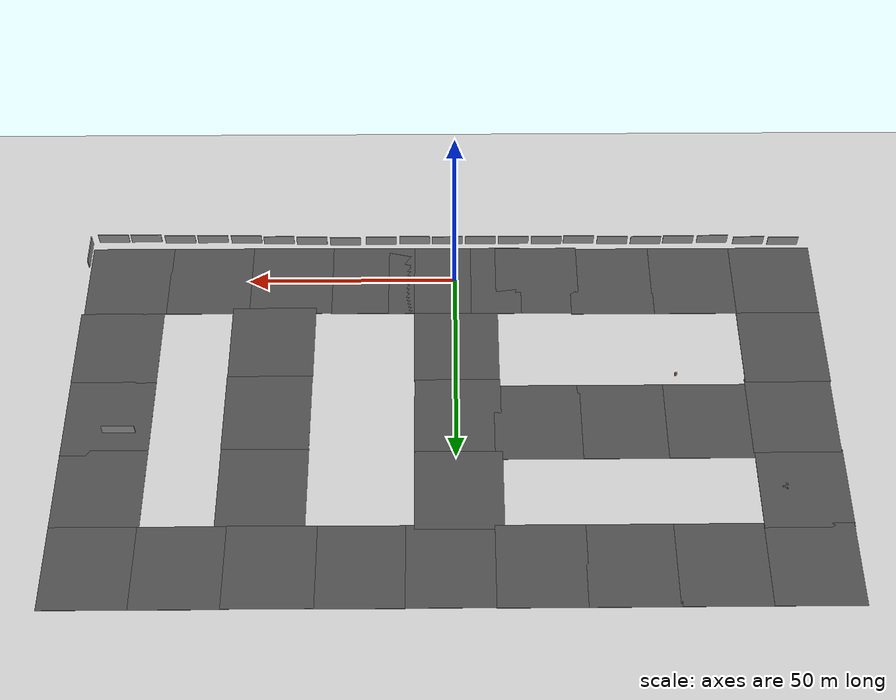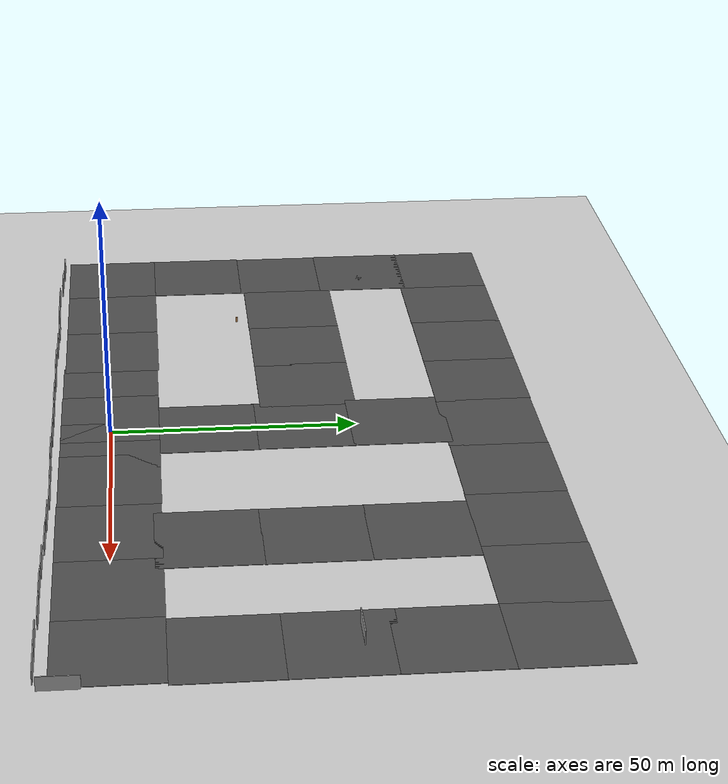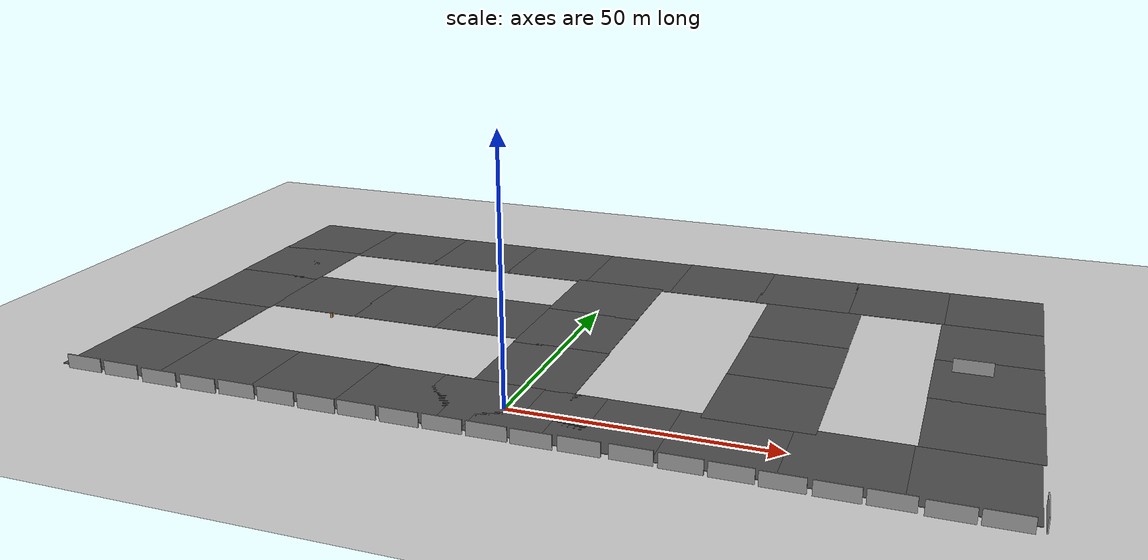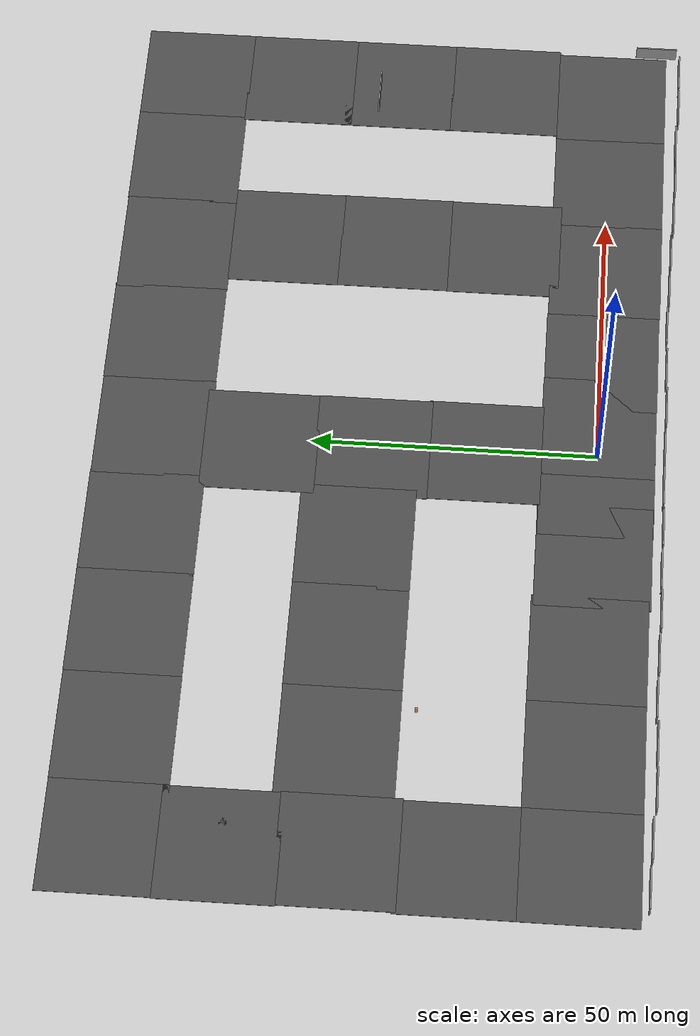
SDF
<sdf version="1.7">
 <world name="default">
  <model name="ground_plane">
   <static>1</static>
   <link name="link">
    <collision name="collision">
     <geometry><plane><normal>0 0 1</normal><size>100 100</size></plane></geometry>
     <surface><friction><ode><mu>100</mu><mu2>50</mu2></ode></friction></surface>
    </collision>
    <visual name="visual">
     <cast_shadows>0</cast_shadows>
     <geometry><plane><normal>0 0 1</normal><size>100 100</size></plane></geometry>
     <material>
      <script><uri>file://media/materials/scripts/gazebo.material</uri><name>Gazebo/Grey</name></script>
     </material>
    </visual>
   </link>
  </model>
  <gravity>0 0 -9.8</gravity>
  <magnetic_field>6e-06 2.3e-05 -4.2e-05</magnetic_field>
  <atmosphere type="adiabatic"/>
  <physics type="ode">
   <max_step_size>0.001</max_step_size>
   <real_time_factor>1</real_time_factor>
   <real_time_update_rate>1000</real_time_update_rate>
  </physics>
  <scene><ambient>0.4 0.4 0.4 1</ambient><background>0.7 0.7 0.7 1</background><shadows>1</shadows></scene>
  <audio><device>default</device></audio>
  <spherical_coordinates>
   <surface_model>EARTH_WGS84</surface_model>
   <latitude_deg>0</latitude_deg>
   <longitude_deg>0</longitude_deg>
   <elevation>0</elevation>
   <heading_deg>0</heading_deg>
  </spherical_coordinates>
  <model name="asphalt_plane_0">
   <static>1</static>
   <link name="link">
    <collision name="collision"><geometry><box><size>20 20 0.1</size></box></geometry></collision>
    <visual name="visual">
     <cast_shadows>0</cast_shadows>
     <geometry><box><size>20 20 0.1</size></box></geometry>
     <material>
      <script>
       <uri>model://asphalt_plane/materials/scripts</uri>
       <uri>model://asphalt_plane/materials/textures</uri>
       <name>vrc/asphalt</name>
      </script>
     </material>
    </visual>
   </link>
   <pose>19.7919 -0.145678 0 0 -0 0</pose>
  </model>
  <model name="asphalt_plane_1">
   <static>1</static>
   <link name="link">
    <collision name="collision"><geometry><box><size>20 20 0.1</size></box></geometry></collision>
    <visual name="visual">
     <cast_shadows>0</cast_shadows>
     <geometry><box><size>20 20 0.1</size></box></geometry>
     <material>
      <script>
       <uri>model://asphalt_plane/materials/scripts</uri>
       <uri>model://asphalt_plane/materials/textures</uri>
       <name>vrc/asphalt</name>
      </script>
     </material>
    </visual>
   </link>
   <pose>39.7233 -0.27555 0 0 -0 0</pose>
  </model>
  <model name="asphalt_plane_2">
   <static>1</static>
   <link name="link">
    <collision name="collision"><geometry><box><size>20 20 0.1</size></box></geometry></collision>
    <visual name="visual">
     <cast_shadows>0</cast_shadows>
     <geometry><box><size>20 20 0.1</size></box></geometry>
     <material>
      <script>
       <uri>model://asphalt_plane/materials/scripts</uri>
       <uri>model://asphalt_plane/materials/textures</uri>
       <name>vrc/asphalt</name>
      </script>
     </material>
    </visual>
   </link>
   <pose>-20.0269 0.030714 0 0 -0 0</pose>
  </model>
  <model name="asphalt_plane_3">
   <static>1</static>
   <link name="link">
    <collision name="collision"><geometry><box><size>20 20 0.1</size></box></geometry></collision>
    <visual name="visual">
     <cast_shadows>0</cast_shadows>
     <geometry><box><size>20 20 0.1</size></box></geometry>
     <material>
      <script>
       <uri>model://asphalt_plane/materials/scripts</uri>
       <uri>model://asphalt_plane/materials/textures</uri>
       <name>vrc/asphalt</name>
      </script>
     </material>
    </visual>
   </link>
   <pose>-38.1078 0.338038 0 0 -0 0</pose>
  </model>
  <model name="asphalt_plane_4">
   <static>1</static>
   <link name="link">
    <collision name="collision"><geometry><box><size>20 20 0.1</size></box></geometry></collision>
    <visual name="visual">
     <cast_shadows>0</cast_shadows>
     <geometry><box><size>20 20 0.1</size></box></geometry>
     <material>
      <script>
       <uri>model://asphalt_plane/materials/scripts</uri>
       <uri>model://asphalt_plane/materials/textures</uri>
       <name>vrc/asphalt</name>
      </script>
     </material>
    </visual>
   </link>
   <pose>59.5212 -0.269111 0 0 -0 0</pose>
  </model>
  <model name="asphalt_plane_5">
   <static>1</static>
   <link name="link">
    <collision name="collision"><geometry><box><size>20 20 0.1</size></box></geometry></collision>
    <visual name="visual">
     <cast_shadows>0</cast_shadows>
     <geometry><box><size>20 20 0.1</size></box></geometry>
     <material>
      <script>
       <uri>model://asphalt_plane/materials/scripts</uri>
       <uri>model://asphalt_plane/materials/textures</uri>
       <name>vrc/asphalt</name>
      </script>
     </material>
    </visual>
   </link>
   <pose>-57.8489 0.35056 0 0 -0 0</pose>
  </model>
  <model name="asphalt_plane_6">
   <static>1</static>
   <link name="link">
    <collision name="collision"><geometry><box><size>20 20 0.1</size></box></geometry></collision>
    <visual name="visual">
     <cast_shadows>0</cast_shadows>
     <geometry><box><size>20 20 0.1</size></box></geometry>
     <material>
      <script>
       <uri>model://asphalt_plane/materials/scripts</uri>
       <uri>model://asphalt_plane/materials/textures</uri>
       <name>vrc/asphalt</name>
      </script>
     </material>
    </visual>
   </link>
   <pose>-77.7135 0.32508 0 0 -0 0</pose>
  </model>
  <model name="asphalt_plane_7">
   <static>1</static>
   <link name="link">
    <collision name="collision"><geometry><box><size>20 20 0.1</size></box></geometry></collision>
    <visual name="visual">
     <cast_shadows>0</cast_shadows>
     <geometry><box><size>20 20 0.1</size></box></geometry>
     <material>
      <script>
       <uri>model://asphalt_plane/materials/scripts</uri>
       <uri>model://asphalt_plane/materials/textures</uri>
       <name>vrc/asphalt</name>
      </script>
     </material>
    </visual>
   </link>
   <pose>79.2506 -0.283383 0 0 -0 0</pose>
  </model>
  <model name="asphalt_plane_8">
   <static>1</static>
   <link name="link">
    <collision name="collision"><geometry><box><size>20 20 0.1</size></box></geometry></collision>
    <visual name="visual">
     <cast_shadows>0</cast_shadows>
     <geometry><box><size>20 20 0.1</size></box></geometry>
     <material>
      <script>
       <uri>model://asphalt_plane/materials/scripts</uri>
       <uri>model://asphalt_plane/materials/textures</uri>
       <name>vrc/asphalt</name>
      </script>
     </material>
    </visual>
   </link>
   <pose>-77.7064 20.2666 0 0 -0 0</pose>
  </model>
  <model name="asphalt_plane_9">
   <static>1</static>
   <link name="link">
    <collision name="collision"><geometry><box><size>20 20 0.1</size></box></geometry></collision>
    <visual name="visual">
     <cast_shadows>0</cast_shadows>
     <geometry><box><size>20 20 0.1</size></box></geometry>
     <material>
      <script>
       <uri>model://asphalt_plane/materials/scripts</uri>
       <uri>model://asphalt_plane/materials/textures</uri>
       <name>vrc/asphalt</name>
      </script>
     </material>
    </visual>
   </link>
   <pose>-77.4605 39.5029 0 0 -0 0</pose>
  </model>
  <model name="asphalt_plane_10">
   <static>1</static>
   <link name="link">
    <collision name="collision"><geometry><box><size>20 20 0.1</size></box></geometry></collision>
    <visual name="visual">
     <cast_shadows>0</cast_shadows>
     <geometry><box><size>20 20 0.1</size></box></geometry>
     <material>
      <script>
       <uri>model://asphalt_plane/materials/scripts</uri>
       <uri>model://asphalt_plane/materials/textures</uri>
       <name>vrc/asphalt</name>
      </script>
     </material>
    </visual>
   </link>
   <pose>-77.6313 58.8 0 0 -0 0</pose>
  </model>
  <model name="asphalt_plane_11">
   <static>1</static>
   <link name="link">
    <collision name="collision"><geometry><box><size>20 20 0.1</size></box></geometry></collision>
    <visual name="visual">
     <cast_shadows>0</cast_shadows>
     <geometry><box><size>20 20 0.1</size></box></geometry>
     <material>
      <script>
       <uri>model://asphalt_plane/materials/scripts</uri>
       <uri>model://asphalt_plane/materials/textures</uri>
       <name>vrc/asphalt</name>
      </script>
     </material>
    </visual>
   </link>
   <pose>-77.5199 77.7003 0 0 -0 0</pose>
  </model>
  <model name="asphalt_plane_12">
   <static>1</static>
   <link name="link">
    <collision name="collision"><geometry><box><size>20 20 0.1</size></box></geometry></collision>
    <visual name="visual">
     <cast_shadows>0</cast_shadows>
     <geometry><box><size>20 20 0.1</size></box></geometry>
     <material>
      <script>
       <uri>model://asphalt_plane/materials/scripts</uri>
       <uri>model://asphalt_plane/materials/textures</uri>
       <name>vrc/asphalt</name>
      </script>
     </material>
    </visual>
   </link>
   <pose>-57.6259 77.7278 0 0 -0 0</pose>
  </model>
  <model name="asphalt_plane_13">
   <static>1</static>
   <link name="link">
    <collision name="collision"><geometry><box><size>20 20 0.1</size></box></geometry></collision>
    <visual name="visual">
     <cast_shadows>0</cast_shadows>
     <geometry><box><size>20 20 0.1</size></box></geometry>
     <material>
      <script>
       <uri>model://asphalt_plane/materials/scripts</uri>
       <uri>model://asphalt_plane/materials/textures</uri>
       <name>vrc/asphalt</name>
      </script>
     </material>
    </visual>
   </link>
   <pose>-37.9501 77.7772 0 0 -0 0</pose>
  </model>
  <model name="asphalt_plane_14">
   <static>1</static>
   <link name="link">
    <collision name="collision"><geometry><box><size>20 20 0.1</size></box></geometry></collision>
    <visual name="visual">
     <cast_shadows>0</cast_shadows>
     <geometry><box><size>20 20 0.1</size></box></geometry>
     <material>
      <script>
       <uri>model://asphalt_plane/materials/scripts</uri>
       <uri>model://asphalt_plane/materials/textures</uri>
       <name>vrc/asphalt</name>
      </script>
     </material>
    </visual>
   </link>
   <pose>-18.3401 77.7894 0 0 -0 0</pose>
  </model>
  <model name="asphalt_plane_15">
   <static>1</static>
   <link name="link">
    <collision name="collision"><geometry><box><size>20 20 0.1</size></box></geometry></collision>
    <visual name="visual">
     <cast_shadows>0</cast_shadows>
     <geometry><box><size>20 20 0.1</size></box></geometry>
     <material>
      <script>
       <uri>model://asphalt_plane/materials/scripts</uri>
       <uri>model://asphalt_plane/materials/textures</uri>
       <name>vrc/asphalt</name>
      </script>
     </material>
    </visual>
   </link>
   <pose>1.24972 77.6939 0 0 -0 0</pose>
  </model>
  <model name="asphalt_plane_16">
   <static>1</static>
   <link name="link">
    <collision name="collision"><geometry><box><size>20 20 0.1</size></box></geometry></collision>
    <visual name="visual">
     <cast_shadows>0</cast_shadows>
     <geometry><box><size>20 20 0.1</size></box></geometry>
     <material>
      <script>
       <uri>model://asphalt_plane/materials/scripts</uri>
       <uri>model://asphalt_plane/materials/textures</uri>
       <name>vrc/asphalt</name>
      </script>
     </material>
    </visual>
   </link>
   <pose>21.1271 77.7722 0 0 -0 0</pose>
  </model>
  <model name="asphalt_plane_17">
   <static>1</static>
   <link name="link">
    <collision name="collision"><geometry><box><size>20 20 0.1</size></box></geometry></collision>
    <visual name="visual">
     <cast_shadows>0</cast_shadows>
     <geometry><box><size>20 20 0.1</size></box></geometry>
     <material>
      <script>
       <uri>model://asphalt_plane/materials/scripts</uri>
       <uri>model://asphalt_plane/materials/textures</uri>
       <name>vrc/asphalt</name>
      </script>
     </material>
    </visual>
   </link>
   <pose>40.6804 77.6737 0 0 -0 0</pose>
  </model>
  <model name="asphalt_plane_18">
   <static>1</static>
   <link name="link">
    <collision name="collision"><geometry><box><size>20 20 0.1</size></box></geometry></collision>
    <visual name="visual">
     <cast_shadows>0</cast_shadows>
     <geometry><box><size>20 20 0.1</size></box></geometry>
     <material>
      <script>
       <uri>model://asphalt_plane/materials/scripts</uri>
       <uri>model://asphalt_plane/materials/textures</uri>
       <name>vrc/asphalt</name>
      </script>
     </material>
    </visual>
   </link>
   <pose>60.3702 77.7738 0 0 -0 0</pose>
  </model>
  <model name="asphalt_plane_19">
   <static>1</static>
   <link name="link">
    <collision name="collision"><geometry><box><size>20 20 0.1</size></box></geometry></collision>
    <visual name="visual">
     <cast_shadows>0</cast_shadows>
     <geometry><box><size>20 20 0.1</size></box></geometry>
     <material>
      <script>
       <uri>model://asphalt_plane/materials/scripts</uri>
       <uri>model://asphalt_plane/materials/textures</uri>
       <name>vrc/asphalt</name>
      </script>
     </material>
    </visual>
   </link>
   <pose>79.9022 77.7647 0 0 -0 0</pose>
  </model>
  <model name="asphalt_plane_20">
   <static>1</static>
   <link name="link">
    <collision name="collision"><geometry><box><size>20 20 0.1</size></box></geometry></collision>
    <visual name="visual">
     <cast_shadows>0</cast_shadows>
     <geometry><box><size>20 20 0.1</size></box></geometry>
     <material>
      <script>
       <uri>model://asphalt_plane/materials/scripts</uri>
       <uri>model://asphalt_plane/materials/textures</uri>
       <name>vrc/asphalt</name>
      </script>
     </material>
    </visual>
   </link>
   <pose>79.8789 58.092 0 0 -0 0</pose>
  </model>
  <model name="asphalt_plane_21">
   <static>1</static>
   <link name="link">
    <collision name="collision"><geometry><box><size>20 20 0.1</size></box></geometry></collision>
    <visual name="visual">
     <cast_shadows>0</cast_shadows>
     <geometry><box><size>20 20 0.1</size></box></geometry>
     <material>
      <script>
       <uri>model://asphalt_plane/materials/scripts</uri>
       <uri>model://asphalt_plane/materials/textures</uri>
       <name>vrc/asphalt</name>
      </script>
     </material>
    </visual>
   </link>
   <pose>79.8649 39.4152 0 0 -0 0</pose>
  </model>
  <model name="asphalt_plane_22">
   <static>1</static>
   <link name="link">
    <collision name="collision"><geometry><box><size>20 20 0.1</size></box></geometry></collision>
    <visual name="visual">
     <cast_shadows>0</cast_shadows>
     <geometry><box><size>20 20 0.1</size></box></geometry>
     <material>
      <script>
       <uri>model://asphalt_plane/materials/scripts</uri>
       <uri>model://asphalt_plane/materials/textures</uri>
       <name>vrc/asphalt</name>
      </script>
     </material>
    </visual>
   </link>
   <pose>79.892 19.6362 0 0 -0 0</pose>
  </model>
  <model name="asphalt_plane_23">
   <static>1</static>
   <link name="link">
    <collision name="collision"><geometry><box><size>20 20 0.1</size></box></geometry></collision>
    <visual name="visual">
     <cast_shadows>0</cast_shadows>
     <geometry><box><size>20 20 0.1</size></box></geometry>
     <material>
      <script>
       <uri>model://asphalt_plane/materials/scripts</uri>
       <uri>model://asphalt_plane/materials/textures</uri>
       <name>vrc/asphalt</name>
      </script>
     </material>
    </visual>
   </link>
   <pose>-0.287993 19.6626 0 0 -0 0</pose>
  </model>
  <model name="asphalt_plane_24">
   <static>1</static>
   <link name="link">
    <collision name="collision"><geometry><box><size>20 20 0.1</size></box></geometry></collision>
    <visual name="visual">
     <cast_shadows>0</cast_shadows>
     <geometry><box><size>20 20 0.1</size></box></geometry>
     <material>
      <script>
       <uri>model://asphalt_plane/materials/scripts</uri>
       <uri>model://asphalt_plane/materials/textures</uri>
       <name>vrc/asphalt</name>
      </script>
     </material>
    </visual>
   </link>
   <pose>-0.445842 39.1533 0 0 -0 0</pose>
  </model>
  <model name="asphalt_plane_25">
   <static>1</static>
   <link name="link">
    <collision name="collision"><geometry><box><size>20 20 0.1</size></box></geometry></collision>
    <visual name="visual">
     <cast_shadows>0</cast_shadows>
     <geometry><box><size>20 20 0.1</size></box></geometry>
     <material>
      <script>
       <uri>model://asphalt_plane/materials/scripts</uri>
       <uri>model://asphalt_plane/materials/textures</uri>
       <name>vrc/asphalt</name>
      </script>
     </material>
    </visual>
   </link>
   <pose>-0.548904 58.7729 0 0 -0 0</pose>
  </model>
  <model name="trisphere_cycle">
   <link name="frame">
    <pose>-0.408559 0 0.385023 0 -0.522021 0</pose>
    <inertial>
     <mass>10</mass>
     <inertia><ixx>0.228</ixx><iyy>0.743521</iyy><izz>0.965521</izz><ixy>0</ixy><ixz>0</ixz><iyz>0</iyz></inertia>
    </inertial>
    <collision name="axle_collision">
     <pose>-0.471335 0 0 1.5708 -0 0</pose>
     <geometry><cylinder><length>1.03923</length><radius>0.03</radius></cylinder></geometry>
    </collision>
    <visual name="axle_visual">
     <pose>-0.471335 0 0 1.5708 -0 0</pose>
     <geometry><cylinder><length>1.03923</length><radius>0.03</radius></cylinder></geometry>
     <material>
      <script><uri>file://media/materials/scripts/gazebo.material</uri><name>Gazebo/Grey</name></script>
     </material>
    </visual>
    <collision name="frame_left_collision">
     <pose>0 0.171552 0 -2.79253 1.57079 3.14159</pose>
     <geometry><cylinder><length>1.00317</length><radius>0.03</radius></cylinder></geometry>
    </collision>
    <visual name="frame_left_visual">
     <pose>0 0.171552 0 -2.79253 1.57079 3.14159</pose>
     <geometry><cylinder><length>1.00317</length><radius>0.03</radius></cylinder></geometry>
     <material>
      <script><uri>file://media/materials/scripts/gazebo.material</uri><name>Gazebo/Grey</name></script>
     </material>
    </visual>
    <collision name="frame_right_collision">
     <pose>0 -0.171552 0 2.79253 1.57079 -3.14159</pose>
     <geometry><cylinder><length>1.00317</length><radius>0.03</radius></cylinder></geometry>
    </collision>
    <visual name="frame_right_visual">
     <pose>0 -0.171552 0 2.79253 1.57079 -3.14159</pose>
     <geometry><cylinder><length>1.00317</length><radius>0.03</radius></cylinder></geometry>
     <material>
      <script><uri>file://media/materials/scripts/gazebo.material</uri><name>Gazebo/Grey</name></script>
     </material>
    </visual>
   </link>
   <link name="fork">
    <pose>0.041441 0 0.385023 0 -0.174533 0</pose>
    <inertial>
     <mass>3</mass>
     <inertia>
      <ixx>0.158203</ixx>
      <iyy>0.0583594</iyy>
      <izz>0.102656</izz>
      <ixy>0</ixy>
      <ixz>0</ixz>
      <iyz>0</iyz>
     </inertia>
    </inertial>
    <collision name="handlebars_collision">
     <pose>0 0 0.397748 1.5708 -0 0</pose>
     <geometry><cylinder><length>0.636396</length><radius>0.0375</radius></cylinder></geometry>
    </collision>
    <visual name="handlebars_visual">
     <pose>0 0 0.397748 1.5708 -0 0</pose>
     <geometry><cylinder><length>0.636396</length><radius>0.0375</radius></cylinder></geometry>
     <material>
      <script><uri>file://media/materials/scripts/gazebo.material</uri><name>Gazebo/Grey</name></script>
     </material>
    </visual>
    <collision name="headtube_collision">
     <pose>0 0 0.238649 0 -0 0</pose>
     <geometry><cylinder><length>0.318198</length><radius>0.0375</radius></cylinder></geometry>
    </collision>
    <visual name="headtube_visual">
     <pose>0 0 0.238649 0 -0 0</pose>
     <geometry><cylinder><length>0.318198</length><radius>0.0375</radius></cylinder></geometry>
     <material>
      <script><uri>file://media/materials/scripts/gazebo.material</uri><name>Gazebo/Grey</name></script>
     </material>
    </visual>
    <collision name="spindle_collision">
     <pose>0 0 -0.238649 1.5708 -0 0</pose>
     <geometry><cylinder><length>0.636396</length><radius>0.015</radius></cylinder></geometry>
    </collision>
    <visual name="spindle_visual">
     <pose>0 0 -0.238649 1.5708 -0 0</pose>
     <geometry><cylinder><length>0.636396</length><radius>0.015</radius></cylinder></geometry>
     <material>
      <script><uri>file://media/materials/scripts/gazebo.material</uri><name>Gazebo/Grey</name></script>
     </material>
    </visual>
    <collision name="fork_left_collision">
     <pose>0 0.159099 -0.07955 0.785398 -0 0</pose>
     <geometry><cylinder><length>0.45</length><radius>0.0375</radius></cylinder></geometry>
    </collision>
    <visual name="fork_left_visual">
     <pose>0 0.159099 -0.07955 0.785398 -0 0</pose>
     <geometry><cylinder><length>0.45</length><radius>0.0375</radius></cylinder></geometry>
     <material>
      <script><uri>file://media/materials/scripts/gazebo.material</uri><name>Gazebo/Grey</name></script>
     </material>
    </visual>
    <collision name="fork_right_collision">
     <pose>0 -0.159099 -0.07955 -0.785398 0 0</pose>
     <geometry><cylinder><length>0.45</length><radius>0.0375</radius></cylinder></geometry>
    </collision>
    <visual name="fork_right_visual">
     <pose>0 -0.159099 -0.07955 -0.785398 0 0</pose>
     <geometry><cylinder><length>0.45</length><radius>0.0375</radius></cylinder></geometry>
     <material>
      <script><uri>file://media/materials/scripts/gazebo.material</uri><name>Gazebo/Grey</name></script>
     </material>
    </visual>
   </link>
   <link name="wheel_front">
    <pose>0.082882 0 0.15 0 -0 0</pose>
    <inertial>
     <mass>0.5</mass>
     <inertia><ixx>0.0045</ixx><iyy>0.0045</iyy><izz>0.0045</izz><ixy>0</ixy><ixz>0</ixz><iyz>0</iyz></inertia>
    </inertial>
    <collision name="collision">
     <geometry><sphere><radius>0.15</radius></sphere></geometry>
     <surface><contact><ode><kp>1e+08</kp><kd>1</kd><min_depth>0.0005</min_depth></ode></contact></surface>
    </collision>
    <visual name="visual">
     <geometry><sphere><radius>0.15</radius></sphere></geometry>
     <material>
      <script><uri>file://media/materials/scripts/gazebo.material</uri><name>Gazebo/Black</name></script>
     </material>
    </visual>
   </link>
   <joint name="wheel_front_steer" type="revolute">
    <parent>frame</parent>
    <child>fork</child>
    <axis>
     <xyz>0 0 1</xyz>
     <limit><lower>-0.959931</lower><upper>0.959931</upper></limit>
     <dynamics><spring_reference>0</spring_reference><spring_stiffness>0</spring_stiffness></dynamics>
    </axis>
   </joint>
   <joint name="wheel_front_spin" type="revolute">
    <parent>fork</parent>
    <child>wheel_front</child>
    <axis>
     <xyz>0 1 0</xyz>
     <limit><lower>-1e+16</lower><upper>1e+16</upper></limit>
     <dynamics><spring_reference>0</spring_reference><spring_stiffness>0</spring_stiffness></dynamics>
    </axis>
   </joint>
   <link name="wheel_rear_left">
    <pose>-0.817118 0.519615 0.15 0 -0 0</pose>
    <inertial>
     <mass>0.5</mass>
     <inertia><ixx>0.0045</ixx><iyy>0.0045</iyy><izz>0.0045</izz><ixy>0</ixy><ixz>0</ixz><iyz>0</iyz></inertia>
    </inertial>
    <collision name="collision">
     <geometry><sphere><radius>0.15</radius></sphere></geometry>
     <surface><contact><ode><kp>1e+08</kp><kd>1</kd><min_depth>0.0005</min_depth></ode></contact></surface>
    </collision>
    <visual name="visual">
     <geometry><sphere><radius>0.15</radius></sphere></geometry>
     <material>
      <script><uri>file://media/materials/scripts/gazebo.material</uri><name>Gazebo/Black</name></script>
     </material>
    </visual>
   </link>
   <joint name="wheel_rear_left_spin" type="revolute">
    <parent>frame</parent>
    <child>wheel_rear_left</child>
    <axis>
     <xyz>0 1 0</xyz>
     <limit><lower>-1e+16</lower><upper>1e+16</upper></limit>
     <dynamics><spring_reference>0</spring_reference><spring_stiffness>0</spring_stiffness></dynamics>
    </axis>
   </joint>
   <link name="wheel_rear_right">
    <pose>-0.817118 -0.519615 0.15 0 -0 0</pose>
    <inertial>
     <mass>0.5</mass>
     <inertia><ixx>0.0045</ixx><iyy>0.0045</iyy><izz>0.0045</izz><ixy>0</ixy><ixz>0</ixz><iyz>0</iyz></inertia>
    </inertial>
    <collision name="collision">
     <geometry><sphere><radius>0.15</radius></sphere></geometry>
     <surface><contact><ode><kp>1e+08</kp><kd>1</kd><min_depth>0.0005</min_depth></ode></contact></surface>
    </collision>
    <visual name="visual">
     <geometry><sphere><radius>0.15</radius></sphere></geometry>
     <material>
      <script><uri>file://media/materials/scripts/gazebo.material</uri><name>Gazebo/Black</name></script>
     </material>
    </visual>
   </link>
   <joint name="wheel_rear_right_spin" type="revolute">
    <parent>frame</parent>
    <child>wheel_rear_right</child>
    <axis>
     <xyz>0 1 0</xyz>
     <limit><lower>-1e+16</lower><upper>1e+16</upper></limit>
     <dynamics><spring_reference>0</spring_reference><spring_stiffness>0</spring_stiffness></dynamics>
    </axis>
   </joint>
   <pose>-73.8784 58.0689 0.049499 0 1e-06 -2.14302</pose>
  </model>
  <model name="asphalt_plane_26">
   <static>1</static>
   <link name="link">
    <collision name="collision"><geometry><box><size>20 20 0.1</size></box></geometry></collision>
    <visual name="visual">
     <cast_shadows>0</cast_shadows>
     <geometry><box><size>20 20 0.1</size></box></geometry>
     <material>
      <script>
       <uri>model://asphalt_plane/materials/scripts</uri>
       <uri>model://asphalt_plane/materials/textures</uri>
       <name>vrc/asphalt</name>
      </script>
     </material>
    </visual>
   </link>
   <pose>-57.7713 40.9216 0 0 -0 0</pose>
  </model>
  <model name="asphalt_plane_27">
   <static>1</static>
   <link name="link">
    <collision name="collision"><geometry><box><size>20 20 0.1</size></box></geometry></collision>
    <visual name="visual">
     <cast_shadows>0</cast_shadows>
     <geometry><box><size>20 20 0.1</size></box></geometry>
     <material>
      <script>
       <uri>model://asphalt_plane/materials/scripts</uri>
       <uri>model://asphalt_plane/materials/textures</uri>
       <name>vrc/asphalt</name>
      </script>
     </material>
    </visual>
   </link>
   <pose>-38.2701 40.96 0 0 -0 0</pose>
  </model>
  <model name="asphalt_plane_28">
   <static>1</static>
   <link name="link">
    <collision name="collision"><geometry><box><size>20 20 0.1</size></box></geometry></collision>
    <visual name="visual">
     <cast_shadows>0</cast_shadows>
     <geometry><box><size>20 20 0.1</size></box></geometry>
     <material>
      <script>
       <uri>model://asphalt_plane/materials/scripts</uri>
       <uri>model://asphalt_plane/materials/textures</uri>
       <name>vrc/asphalt</name>
      </script>
     </material>
    </visual>
   </link>
   <pose>-18.8337 40.9672 0 0 -0 0</pose>
  </model>
  <model name="asphalt_plane_29">
   <static>1</static>
   <link name="link">
    <collision name="collision"><geometry><box><size>20 20 0.1</size></box></geometry></collision>
    <visual name="visual">
     <cast_shadows>0</cast_shadows>
     <geometry><box><size>20 20 0.1</size></box></geometry>
     <material>
      <script>
       <uri>model://asphalt_plane/materials/scripts</uri>
       <uri>model://asphalt_plane/materials/textures</uri>
       <name>vrc/asphalt</name>
      </script>
     </material>
    </visual>
   </link>
   <pose>43.4271 57.7877 0 0 -0 0</pose>
  </model>
  <model name="asphalt_plane_30">
   <static>1</static>
   <link name="link">
    <collision name="collision"><geometry><box><size>20 20 0.1</size></box></geometry></collision>
    <visual name="visual">
     <cast_shadows>0</cast_shadows>
     <geometry><box><size>20 20 0.1</size></box></geometry>
     <material>
      <script>
       <uri>model://asphalt_plane/materials/scripts</uri>
       <uri>model://asphalt_plane/materials/textures</uri>
       <name>vrc/asphalt</name>
      </script>
     </material>
    </visual>
   </link>
   <pose>43.4938 37.9472 0 0 -0 0</pose>
  </model>
  <model name="asphalt_plane_31">
   <static>1</static>
   <link name="link">
    <collision name="collision"><geometry><box><size>20 20 0.1</size></box></geometry></collision>
    <visual name="visual">
     <cast_shadows>0</cast_shadows>
     <geometry><box><size>20 20 0.1</size></box></geometry>
     <material>
      <script>
       <uri>model://asphalt_plane/materials/scripts</uri>
       <uri>model://asphalt_plane/materials/textures</uri>
       <name>vrc/asphalt</name>
      </script>
     </material>
    </visual>
   </link>
   <pose>43.421 18.1249 0 0 -0 0</pose>
  </model>
  <model name="asphalt_plane">
   <static>1</static>
   <link name="link">
    <collision name="collision"><geometry><box><size>20 20 0.1</size></box></geometry></collision>
    <visual name="visual">
     <cast_shadows>0</cast_shadows>
     <geometry><box><size>20 20 0.1</size></box></geometry>
     <material>
      <script>
       <uri>model://asphalt_plane/materials/scripts</uri>
       <uri>model://asphalt_plane/materials/textures</uri>
       <name>vrc/asphalt</name>
      </script>
     </material>
    </visual>
   </link>
   <pose>-6.07434 -0.079258 0 0 -0 0</pose>
  </model>
  <model name="asphalt_plane_32">
   <static>1</static>
   <link name="link">
    <collision name="collision"><geometry><box><size>20 20 0.1</size></box></geometry></collision>
    <visual name="visual">
     <cast_shadows>0</cast_shadows>
     <geometry><box><size>20 20 0.1</size></box></geometry>
     <material>
      <script>
       <uri>model://asphalt_plane/materials/scripts</uri>
       <uri>model://asphalt_plane/materials/textures</uri>
       <name>vrc/asphalt</name>
      </script>
     </material>
    </visual>
   </link>
   <pose>6.03427 -0.069996 0 0 -0 0</pose>
  </model>
  <scene><ambient>0.4 0.4 0.4 1</ambient><background>0.7 0.7 0.7 1</background><shadows>1</shadows></scene>
  <model name="cabinet">
   <static>1</static>
   <link name="cabinet_bottom_plate">
    <inertial>
     <pose>0 0 -1 0 -0 0</pose>
     <inertia><ixx>2.05</ixx><ixy>0</ixy><ixz>0</ixz><iyy>2.05</iyy><iyz>0</iyz><izz>2.05</izz></inertia>
     <mass>25</mass>
    </inertial>
    <collision name="cabinet_bottom_plate_geom">
     <pose>0 0 0.01 0 -0 0</pose>
     <geometry><box><size>0.45 0.45 0.02</size></box></geometry>
    </collision>
    <visual name="cabinet_bottom_plate_geom_visual">
     <pose>0 0 0.01 0 -0 0</pose>
     <geometry><box><size>0.45 0.45 0.02</size></box></geometry>
     <material>
      <script><uri>file://media/materials/scripts/gazebo.material</uri><name>Gazebo/Wood</name></script>
     </material>
    </visual>
    <collision name="cabinet_bottom_plate_geom_cabinet_back_plate">
     <pose>0.235 0 0.51 0 -0 0</pose>
     <geometry><box><size>0.02 0.45 1.02</size></box></geometry>
    </collision>
    <visual name="cabinet_bottom_plate_geom_cabinet_back_plate_visual">
     <pose>0.235 0 0.51 0 -0 0</pose>
     <geometry><box><size>0.02 0.45 1.02</size></box></geometry>
     <material>
      <script><uri>file://media/materials/scripts/gazebo.material</uri><name>Gazebo/Wood</name></script>
     </material>
    </visual>
    <collision name="cabinet_bottom_plate_geom_cabinet_left_plate">
     <pose>0 0.235 0.51 0 -0 0</pose>
     <geometry><box><size>0.45 0.02 1.02</size></box></geometry>
    </collision>
    <visual name="cabinet_bottom_plate_geom_cabinet_left_plate_visual">
     <pose>0 0.235 0.51 0 -0 0</pose>
     <geometry><box><size>0.45 0.02 1.02</size></box></geometry>
     <material>
      <script><uri>file://media/materials/scripts/gazebo.material</uri><name>Gazebo/Wood</name></script>
     </material>
    </visual>
    <collision name="cabinet_bottom_plate_geom_cabinet_middle_plate">
     <pose>0 0 0.51 0 -0 0</pose>
     <geometry><box><size>0.45 0.45 0.02</size></box></geometry>
    </collision>
    <visual name="cabinet_bottom_plate_geom_cabinet_middle_plate_visual">
     <pose>0 0 0.51 0 -0 0</pose>
     <geometry><box><size>0.45 0.45 0.02</size></box></geometry>
     <material>
      <script><uri>file://media/materials/scripts/gazebo.material</uri><name>Gazebo/Wood</name></script>
     </material>
    </visual>
    <collision name="cabinet_bottom_plate_geom_cabinet_right_plate">
     <pose>0 -0.235 0.51 0 -0 0</pose>
     <geometry><box><size>0.45 0.02 1.02</size></box></geometry>
    </collision>
    <visual name="cabinet_bottom_plate_geom_cabinet_right_plate_visual">
     <pose>0 -0.235 0.51 0 -0 0</pose>
     <geometry><box><size>0.45 0.02 1.02</size></box></geometry>
     <material>
      <script><uri>file://media/materials/scripts/gazebo.material</uri><name>Gazebo/Wood</name></script>
     </material>
    </visual>
    <collision name="cabinet_bottom_plate_geom_cabinet_top_plate">
     <pose>0 0 1.01 0 -0 0</pose>
     <geometry><box><size>0.45 0.45 0.02</size></box></geometry>
    </collision>
    <visual name="cabinet_bottom_plate_geom_cabinet_top_plate_visual">
     <pose>0 0 1.01 0 -0 0</pose>
     <geometry><box><size>0.45 0.45 0.02</size></box></geometry>
     <material>
      <script><uri>file://media/materials/scripts/gazebo.material</uri><name>Gazebo/Wood</name></script>
     </material>
    </visual>
   </link>
   <pose>-51.5445 28.4007 0.232582 0 -0 0</pose>
  </model>
  <atmosphere type="adiabatic"/>
  <light name="sun" type="directional">
   <pose>-1.2704 4.13241 10 0 -0 0</pose>
   <diffuse>0.8 0.8 0.8 1</diffuse>
   <specular>0.2 0.2 0.2 1</specular>
   <attenuation>
    <range>1000</range>
    <constant>0.9</constant>
    <linear>0.01</linear>
    <quadratic>0.001</quadratic>
   </attenuation>
   <direction>-0.5 0.1 -0.9</direction>
   <spot><inner_angle>0</inner_angle><outer_angle>0</outer_angle><falloff>0</falloff></spot>
  </light>
  <model name="grey_wall">
   <static>1</static>
   <link name="link">
    <pose>0 0 1.4 0 -0 0</pose>
    <collision name="collision"><geometry><box><size>7.5 0.2 2.8</size></box></geometry></collision>
    <visual name="visual">
     <cast_shadows>0</cast_shadows>
     <geometry><box><size>7.5 0.2 2.8</size></box></geometry>
     <material>
      <script>
       <uri>https://fuel.ignitionrobotics.org/1.0/openrobotics/models/grey wall/3/files/materials/scripts</uri>
       <uri>https://fuel.ignitionrobotics.org/1.0/openrobotics/models/grey wall/3/files/materials/textures</uri>
       <name>vrc/grey_wall</name>
      </script>
     </material>
    </visual>
   </link>
   <pose>-81.3848 -10.8676 0 0 -0 0</pose>
  </model>
  <model name="grey_wall_0">
   <static>1</static>
   <link name="link">
    <pose>0 0 1.4 0 -0 0</pose>
    <collision name="collision"><geometry><box><size>7.5 0.2 2.8</size></box></geometry></collision>
    <visual name="visual">
     <cast_shadows>0</cast_shadows>
     <geometry><box><size>7.5 0.2 2.8</size></box></geometry>
     <material>
      <script>
       <uri>model://grey_wall/materials/scripts</uri>
       <uri>model://grey_wall/materials/textures</uri>
       <name>vrc/grey_wall</name>
      </script>
     </material>
    </visual>
   </link>
   <pose>-55.5069 -11.5401 0 0 -0 0</pose>
  </model>
  <model name="grey_wall_1">
   <static>1</static>
   <link name="link">
    <pose>0 0 1.4 0 -0 0</pose>
    <collision name="collision"><geometry><box><size>7.5 0.2 2.8</size></box></geometry></collision>
    <visual name="visual">
     <cast_shadows>0</cast_shadows>
     <geometry><box><size>7.5 0.2 2.8</size></box></geometry>
     <material>
      <script>
       <uri>model://grey_wall/materials/scripts</uri>
       <uri>model://grey_wall/materials/textures</uri>
       <name>vrc/grey_wall</name>
      </script>
     </material>
    </visual>
   </link>
   <pose>-63.9374 -11.5929 0 0 -0 0</pose>
  </model>
  <model name="grey_wall_2">
   <static>1</static>
   <link name="link">
    <pose>0 0 1.4 0 -0 0</pose>
    <collision name="collision"><geometry><box><size>7.5 0.2 2.8</size></box></geometry></collision>
    <visual name="visual">
     <cast_shadows>0</cast_shadows>
     <geometry><box><size>7.5 0.2 2.8</size></box></geometry>
     <material>
      <script>
       <uri>model://grey_wall/materials/scripts</uri>
       <uri>model://grey_wall/materials/textures</uri>
       <name>vrc/grey_wall</name>
      </script>
     </material>
    </visual>
   </link>
   <pose>-72.8566 -11.1056 0 0 -0 0</pose>
  </model>
  <model name="grey_wall_3">
   <static>1</static>
   <link name="link">
    <pose>0 0 1.4 0 -0 0</pose>
    <collision name="collision"><geometry><box><size>7.5 0.2 2.8</size></box></geometry></collision>
    <visual name="visual">
     <cast_shadows>0</cast_shadows>
     <geometry><box><size>7.5 0.2 2.8</size></box></geometry>
     <material>
      <script>
       <uri>model://grey_wall/materials/scripts</uri>
       <uri>model://grey_wall/materials/textures</uri>
       <name>vrc/grey_wall</name>
      </script>
     </material>
    </visual>
   </link>
   <pose>77.0779 43.1602 0 0 -0 0</pose>
  </model>
  <model name="grey_wall_0_clone">
   <static>1</static>
   <link name="link">
    <pose>0 0 1.4 0 -0 0</pose>
    <collision name="collision"><geometry><box><size>7.5 0.2 2.8</size></box></geometry></collision>
    <visual name="visual">
     <cast_shadows>0</cast_shadows>
     <geometry><box><size>7.5 0.2 2.8</size></box></geometry>
     <material>
      <script>
       <uri>model://grey_wall/materials/scripts</uri>
       <uri>model://grey_wall/materials/textures</uri>
       <name>vrc/grey_wall</name>
      </script>
     </material>
    </visual>
   </link>
   <pose>-47.4206 -11.2974 0 0 -0 0</pose>
  </model>
  <model name="grey_wall_0_clone_0">
   <static>1</static>
   <link name="link">
    <pose>0 0 1.4 0 -0 0</pose>
    <collision name="collision"><geometry><box><size>7.5 0.2 2.8</size></box></geometry></collision>
    <visual name="visual">
     <cast_shadows>0</cast_shadows>
     <geometry><box><size>7.5 0.2 2.8</size></box></geometry>
     <material>
      <script>
       <uri>model://grey_wall/materials/scripts</uri>
       <uri>model://grey_wall/materials/textures</uri>
       <name>vrc/grey_wall</name>
      </script>
     </material>
    </visual>
   </link>
   <pose>-39.1525 -11.4606 0 0 -0 0</pose>
  </model>
  <model name="grey_wall_0_clone_1">
   <static>1</static>
   <link name="link">
    <pose>0 0 1.4 0 -0 0</pose>
    <collision name="collision"><geometry><box><size>7.5 0.2 2.8</size></box></geometry></collision>
    <visual name="visual">
     <cast_shadows>0</cast_shadows>
     <geometry><box><size>7.5 0.2 2.8</size></box></geometry>
     <material>
      <script>
       <uri>model://grey_wall/materials/scripts</uri>
       <uri>model://grey_wall/materials/textures</uri>
       <name>vrc/grey_wall</name>
      </script>
     </material>
    </visual>
   </link>
   <pose>-30.8089 -11.6601 0 0 -0 0</pose>
  </model>
  <model name="grey_wall_0_clone_2">
   <static>1</static>
   <link name="link">
    <pose>0 0 1.4 0 -0 0</pose>
    <collision name="collision"><geometry><box><size>7.5 0.2 2.8</size></box></geometry></collision>
    <visual name="visual">
     <cast_shadows>0</cast_shadows>
     <geometry><box><size>7.5 0.2 2.8</size></box></geometry>
     <material>
      <script>
       <uri>model://grey_wall/materials/scripts</uri>
       <uri>model://grey_wall/materials/textures</uri>
       <name>vrc/grey_wall</name>
      </script>
     </material>
    </visual>
   </link>
   <pose>-22.8286 -11.5395 0 0 -0 0</pose>
  </model>
  <model name="grey_wall_0_clone_3">
   <static>1</static>
   <link name="link">
    <pose>0 0 1.4 0 -0 0</pose>
    <collision name="collision"><geometry><box><size>7.5 0.2 2.8</size></box></geometry></collision>
    <visual name="visual">
     <cast_shadows>0</cast_shadows>
     <geometry><box><size>7.5 0.2 2.8</size></box></geometry>
     <material>
      <script>
       <uri>model://grey_wall/materials/scripts</uri>
       <uri>model://grey_wall/materials/textures</uri>
       <name>vrc/grey_wall</name>
      </script>
     </material>
    </visual>
   </link>
   <pose>-14.6147 -11.6396 0 0 -0 0</pose>
  </model>
  <model name="grey_wall_0_clone_4">
   <static>1</static>
   <link name="link">
    <pose>0 0 1.4 0 -0 0</pose>
    <collision name="collision"><geometry><box><size>7.5 0.2 2.8</size></box></geometry></collision>
    <visual name="visual">
     <cast_shadows>0</cast_shadows>
     <geometry><box><size>7.5 0.2 2.8</size></box></geometry>
     <material>
      <script>
       <uri>model://grey_wall/materials/scripts</uri>
       <uri>model://grey_wall/materials/textures</uri>
       <name>vrc/grey_wall</name>
      </script>
     </material>
    </visual>
   </link>
   <pose>-6.47681 -11.5704 0 0 -0 0</pose>
  </model>
  <model name="grey_wall_0_clone_5">
   <static>1</static>
   <link name="link">
    <pose>0 0 1.4 0 -0 0</pose>
    <collision name="collision"><geometry><box><size>7.5 0.2 2.8</size></box></geometry></collision>
    <visual name="visual">
     <cast_shadows>0</cast_shadows>
     <geometry><box><size>7.5 0.2 2.8</size></box></geometry>
     <material>
      <script>
       <uri>model://grey_wall/materials/scripts</uri>
       <uri>model://grey_wall/materials/textures</uri>
       <name>vrc/grey_wall</name>
      </script>
     </material>
    </visual>
   </link>
   <pose>1.72593 -11.5956 0 0 -0 0</pose>
  </model>
  <model name="grey_wall_0_clone_6">
   <static>1</static>
   <link name="link">
    <pose>0 0 1.4 0 -0 0</pose>
    <collision name="collision"><geometry><box><size>7.5 0.2 2.8</size></box></geometry></collision>
    <visual name="visual">
     <cast_shadows>0</cast_shadows>
     <geometry><box><size>7.5 0.2 2.8</size></box></geometry>
     <material>
      <script>
       <uri>model://grey_wall/materials/scripts</uri>
       <uri>model://grey_wall/materials/textures</uri>
       <name>vrc/grey_wall</name>
      </script>
     </material>
    </visual>
   </link>
   <pose>9.80212 -11.7252 0 0 -0 0</pose>
  </model>
  <model name="grey_wall_0_clone_7">
   <static>1</static>
   <link name="link">
    <pose>0 0 1.4 0 -0 0</pose>
    <collision name="collision"><geometry><box><size>7.5 0.2 2.8</size></box></geometry></collision>
    <visual name="visual">
     <cast_shadows>0</cast_shadows>
     <geometry><box><size>7.5 0.2 2.8</size></box></geometry>
     <material>
      <script>
       <uri>model://grey_wall/materials/scripts</uri>
       <uri>model://grey_wall/materials/textures</uri>
       <name>vrc/grey_wall</name>
      </script>
     </material>
    </visual>
   </link>
   <pose>18.1116 -11.5722 0 0 -0 0</pose>
  </model>
  <model name="grey_wall_0_clone_8">
   <static>1</static>
   <link name="link">
    <pose>0 0 1.4 0 -0 0</pose>
    <collision name="collision"><geometry><box><size>7.5 0.2 2.8</size></box></geometry></collision>
    <visual name="visual">
     <cast_shadows>0</cast_shadows>
     <geometry><box><size>7.5 0.2 2.8</size></box></geometry>
     <material>
      <script>
       <uri>model://grey_wall/materials/scripts</uri>
       <uri>model://grey_wall/materials/textures</uri>
       <name>vrc/grey_wall</name>
      </script>
     </material>
    </visual>
   </link>
   <pose>26.9495 -11.474 0 0 -0 0</pose>
  </model>
  <model name="grey_wall_0_clone_9">
   <static>1</static>
   <link name="link">
    <pose>0 0 1.4 0 -0 0</pose>
    <collision name="collision"><geometry><box><size>7.5 0.2 2.8</size></box></geometry></collision>
    <visual name="visual">
     <cast_shadows>0</cast_shadows>
     <geometry><box><size>7.5 0.2 2.8</size></box></geometry>
     <material>
      <script>
       <uri>model://grey_wall/materials/scripts</uri>
       <uri>model://grey_wall/materials/textures</uri>
       <name>vrc/grey_wall</name>
      </script>
     </material>
    </visual>
   </link>
   <pose>35.2553 -11.7408 0 0 -0 0</pose>
  </model>
  <model name="grey_wall_0_clone_10">
   <static>1</static>
   <link name="link">
    <pose>0 0 1.4 0 -0 0</pose>
    <collision name="collision"><geometry><box><size>7.5 0.2 2.8</size></box></geometry></collision>
    <visual name="visual">
     <cast_shadows>0</cast_shadows>
     <geometry><box><size>7.5 0.2 2.8</size></box></geometry>
     <material>
      <script>
       <uri>model://grey_wall/materials/scripts</uri>
       <uri>model://grey_wall/materials/textures</uri>
       <name>vrc/grey_wall</name>
      </script>
     </material>
    </visual>
   </link>
   <pose>43.418 -11.8804 0 0 -0 0</pose>
  </model>
  <model name="grey_wall_0_clone_11">
   <static>1</static>
   <link name="link">
    <pose>0 0 1.4 0 -0 0</pose>
    <collision name="collision"><geometry><box><size>7.5 0.2 2.8</size></box></geometry></collision>
    <visual name="visual">
     <cast_shadows>0</cast_shadows>
     <geometry><box><size>7.5 0.2 2.8</size></box></geometry>
     <material>
      <script>
       <uri>model://grey_wall/materials/scripts</uri>
       <uri>model://grey_wall/materials/textures</uri>
       <name>vrc/grey_wall</name>
      </script>
     </material>
    </visual>
   </link>
   <pose>51.4868 -12.2271 0 0 -0 0</pose>
  </model>
  <model name="grey_wall_0_clone_12">
   <static>1</static>
   <link name="link">
    <pose>0 0 1.4 0 -0 0</pose>
    <collision name="collision"><geometry><box><size>7.5 0.2 2.8</size></box></geometry></collision>
    <visual name="visual">
     <cast_shadows>0</cast_shadows>
     <geometry><box><size>7.5 0.2 2.8</size></box></geometry>
     <material>
      <script>
       <uri>model://grey_wall/materials/scripts</uri>
       <uri>model://grey_wall/materials/textures</uri>
       <name>vrc/grey_wall</name>
      </script>
     </material>
    </visual>
   </link>
   <pose>59.8279 -12.3613 0 0 -0 0</pose>
  </model>
  <model name="grey_wall_0_clone_13">
   <static>1</static>
   <link name="link">
    <pose>0 0 1.4 0 -0 0</pose>
    <collision name="collision"><geometry><box><size>7.5 0.2 2.8</size></box></geometry></collision>
    <visual name="visual">
     <cast_shadows>0</cast_shadows>
     <geometry><box><size>7.5 0.2 2.8</size></box></geometry>
     <material>
      <script>
       <uri>model://grey_wall/materials/scripts</uri>
       <uri>model://grey_wall/materials/textures</uri>
       <name>vrc/grey_wall</name>
      </script>
     </material>
    </visual>
   </link>
   <pose>67.8948 -12.3072 0 0 -0 0</pose>
  </model>
  <model name="grey_wall_0_clone_14">
   <static>1</static>
   <link name="link">
    <pose>0 0 1.4 0 -0 0</pose>
    <collision name="collision"><geometry><box><size>7.5 0.2 2.8</size></box></geometry></collision>
    <visual name="visual">
     <cast_shadows>0</cast_shadows>
     <geometry><box><size>7.5 0.2 2.8</size></box></geometry>
     <material>
      <script>
       <uri>model://grey_wall/materials/scripts</uri>
       <uri>model://grey_wall/materials/textures</uri>
       <name>vrc/grey_wall</name>
      </script>
     </material>
    </visual>
   </link>
   <pose>76.3532 -12.692 0 0 -0 0</pose>
  </model>
  <model name="grey_wall_0_clone_15">
   <static>1</static>
   <link name="link">
    <pose>0 0 1.4 0 -0 0</pose>
    <collision name="collision"><geometry><box><size>7.5 0.2 2.8</size></box></geometry></collision>
    <visual name="visual">
     <cast_shadows>0</cast_shadows>
     <geometry><box><size>7.5 0.2 2.8</size></box></geometry>
     <material>
      <script>
       <uri>model://grey_wall/materials/scripts</uri>
       <uri>model://grey_wall/materials/textures</uri>
       <name>vrc/grey_wall</name>
      </script>
     </material>
    </visual>
   </link>
   <pose>84.3834 -12.6438 0 0 -0 0</pose>
  </model>
  <model name="grey_wall_0_clone_16">
   <static>1</static>
   <link name="link">
    <pose>0 0 1.4 0 -0 0</pose>
    <collision name="collision"><geometry><box><size>7.5 0.2 2.8</size></box></geometry></collision>
    <visual name="visual">
     <cast_shadows>0</cast_shadows>
     <geometry><box><size>7.5 0.2 2.8</size></box></geometry>
     <material>
      <script>
       <uri>model://grey_wall/materials/scripts</uri>
       <uri>model://grey_wall/materials/textures</uri>
       <name>vrc/grey_wall</name>
      </script>
     </material>
    </visual>
   </link>
   <pose>89.7296 -8.33164 0 0 0 -1.57234</pose>
  </model>
  <fog type="exp2" color="0.8 0.8 0.8 1" density="0.01" start="10" end="50"/>
 </world>
</sdf>
